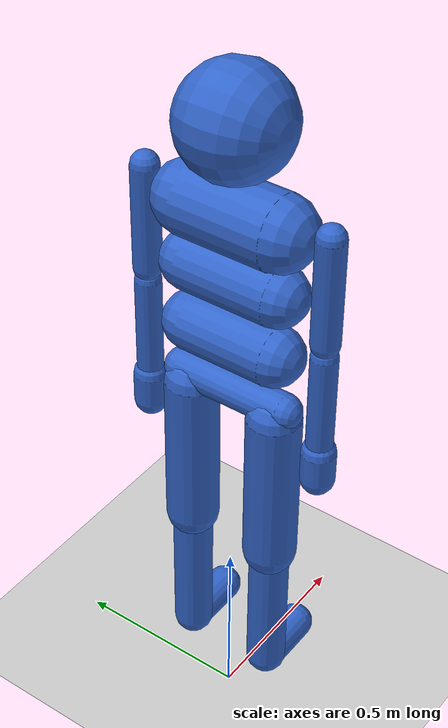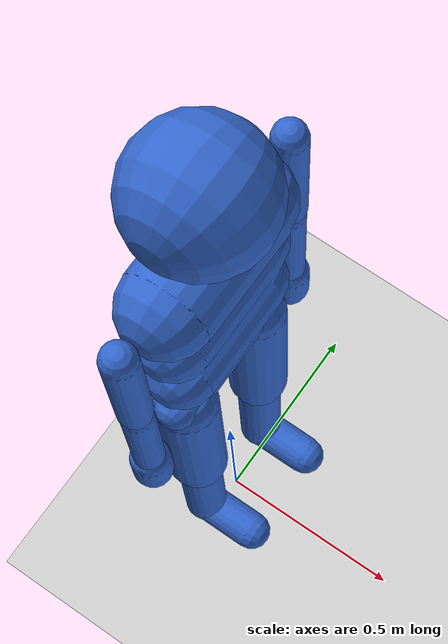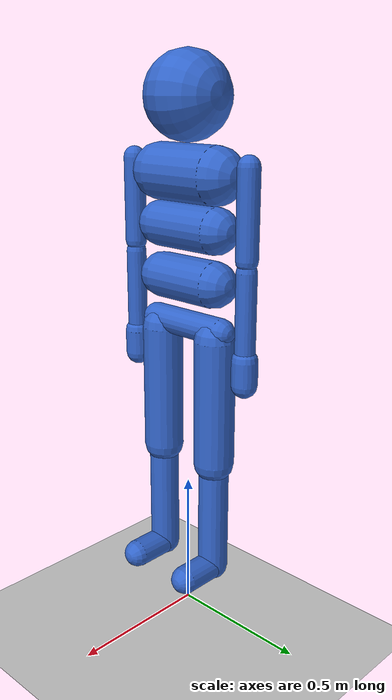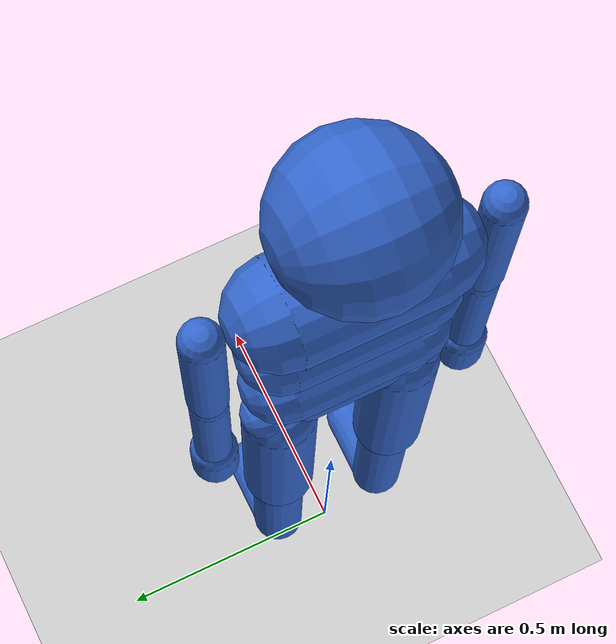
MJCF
<?xml version='1.0' encoding='utf-8'?>
<mujoco model="human">
  <worldbody>
    <geom type="plane" size="1 1 .1" rgba=".8 .8 .8 1" />
    <light diffuse=".8 .8 .8" pos="0 0 3" dir="0 0 -1" />
    <body name="thorax" pos="0 0 1.7090697674418605" euler="90 0 0">
      <joint type="free" pos="0 0 0" />
      <geom type="capsule" size="0.09612209302325583 0.12600000000000003" pos="0 -0.09612209302325583 0" euler="0 0 0" rgba="0.2 0.4 0.8 1" />
      <geom type="capsule" size="0.07864534883720932 0.12600000000000003" pos="0 -0.270889534883721 0" euler="0 0 0" rgba="0.2 0.4 0.8 1" />
      <body name="head" pos="0 0 0">
        <joint name="head_x" type="hinge" axis="1 0 0" pos="0 0 0" range="-45 45" />
        <joint name="head_y" type="hinge" axis="0 1 0" pos="0 0 0" range="-80 80" />
        <joint name="head_z" type="hinge" axis="0 0 1" pos="0 0 0" range="-60 75" />
        <geom type="sphere" size="0.1454651162790698" pos="0 0.1454651162790698 0" euler="0 0 0" rgba="0.2 0.4 0.8 1" />
      </body>
      <body name="abdomen" pos="0 -0.3495348837209303 0">
        <joint name="abdomen_x" type="hinge" axis="1 0 0" pos="0 0 0" range="-12.5 12.5" />
        <joint name="abdomen_y" type="hinge" axis="0 1 0" pos="0 0 0" range="-15 15" />
        <joint name="abdomen_z" type="hinge" axis="0 0 1" pos="0 0 0" range="-25 12.5" />
        <geom type="capsule" size="0.07901162790697674 0.12060000000000001" pos="0 -0.1 0" euler="0 0 0" rgba="0.2 0.4 0.8 1" />
        <body name="pelvis" pos="0 -0.1580232558139535 0">
          <joint name="pelvis_x" type="hinge" axis="1 0 0" pos="0 0 0" range="-12.5 12.5" />
          <joint name="pelvis_y" type="hinge" axis="0 1 0" pos="0 0 0" range="-15 15" />
          <joint name="pelvis_z" type="hinge" axis="0 0 1" pos="0 0 0" range="-25 12.5" />
          <geom type="capsule" size="0.04866279069767442 0.15300000000000002" pos="0 -0.1 0" euler="0 0 0" rgba="0.2 0.4 0.8 1" />
          <body name="left_thigh" pos="0 -0.09732558139534885 -0.126">
            <joint name="left_hip_x" type="hinge" axis="1 0 0" pos="0 0 0" range="-20 40" />
            <joint name="left_hip_y" type="hinge" axis="0 1 0" pos="0 0 0" range="-40 50" />
            <joint name="left_hip_z" type="hinge" axis="0 0 1" pos="0 0 0" range="-30 100" />
            <geom type="capsule" size="0.07200000000000001 0.22604651162790698" pos="0 -0.262046511627907 0" euler="-90 0 0" rgba="0.2 0.4 0.8 1" />
            <body name="left_shank" pos="0 -0.45209302325581396 0">
              <joint name="left_knee_z" type="hinge" axis="0 0 1" pos="0 0 0" range="-150 0" />
              <geom type="capsule" size="0.054 0.22656976744186047" pos="0 -0.22656976744186047 0" euler="-90 0 0" rgba="0.2 0.4 0.8 1" />
              <body name="left_foot" pos="0 -0.45313953488372094 0">
                <joint name="left_ankle_y" type="hinge" axis="0 1 0" pos="0 0 0" range="-30 30" />
                <joint name="left_ankle_z" type="hinge" axis="0 0 1" pos="0 0 0" range="-20 30" />
                <geom type="capsule" size="0.05 0.0727325581395349" pos="0.0727325581395349 0 0" euler="0 90 0" rgba="0.2 0.4 0.8 1" />
              </body>
            </body>
          </body>
          <body name="right_thigh" pos="0 -0.09732558139534885 0.126">
            <joint name="right_hip_x" type="hinge" axis="1 0 0" pos="0 0 0" range="-40 20" />
            <joint name="right_hip_y" type="hinge" axis="0 1 0" pos="0 0 0" range="-40 50" />
            <joint name="right_hip_z" type="hinge" axis="0 0 1" pos="0 0 0" range="-30 100" />
            <geom type="capsule" size="0.07200000000000001 0.22604651162790698" pos="0 -0.262046511627907 0" euler="-90 0 0" rgba="0.2 0.4 0.8 1" />
            <body name="right_shank" pos="0 -0.45209302325581396 0">
              <joint name="right_knee_z" type="hinge" axis="0 0 1" pos="0 0 0" range="-150 0" />
              <geom type="capsule" size="0.054 0.22656976744186047" pos="0 -0.22656976744186047 0" euler="-90 0 0" rgba="0.2 0.4 0.8 1" />
              <body name="right_foot" pos="0 -0.45313953488372094 0">
                <joint name="right_ankle_y" type="hinge" axis="0 1 0" pos="0 0 0" range="-30 30" />
                <joint name="right_ankle_z" type="hinge" axis="0 0 1" pos="0 0 0" range="-20 30" />
                <geom type="capsule" size="0.05 0.0727325581395349" pos="0.0727325581395349 0 0" euler="0 90 0" rgba="0.2 0.4 0.8 1" />
              </body>
            </body>
          </body>
        </body>
      </body>
      <body name="left_upper_arm" pos="0 -0.09612209302325583 -0.25956209302325584">
        <joint name="left_shoulder_x" type="hinge" axis="1 0 0" pos="0 0.03744 0" range="-50 180" />
        <joint name="left_shoulder_y" type="hinge" axis="0 1 0" pos="0 0.03744 0" range="-90 90" />
        <joint name="left_shoulder_z" type="hinge" axis="0 0 1" pos="0 0.03744 0" range="-50 180" />
        <geom type="capsule" size="0.03744 0.1449418604651163" pos="0 -0.10750186046511631 0" euler="-90 0 0" rgba="0.2 0.4 0.8 1" />
        <body name="left_forearm" pos="0 -0.2898837209302326 0">
          <joint name="left_elbow_z" type="hinge" axis="0 0 1" pos="0 0 0" range="0 150" />
          <geom type="capsule" size="0.035 0.1480813953488372" pos="0 -0.1480813953488372 0" euler="-90 0 0" rgba="0.2 0.4 0.8 1" />
          <body name="left_hand" pos="0 -0.2961627906976744 0">
            <joint name="left_wrist_y" type="hinge" axis="0 1 0" pos="0 0 0" range="-80 80" />
            <joint name="left_wrist_z" type="hinge" axis="0 0 1" pos="0 0 0" range="-60 60" />
            <geom type="capsule" size="0.045 0.041860465116279076" pos="0 -0.041860465116279076 0" euler="-90 0 0" rgba="0.2 0.4 0.8 1" />
          </body>
        </body>
      </body>
      <body name="right_upper_arm" pos="0 -0.09612209302325583 0.25956209302325584">
        <joint name="right_shoulder_x" type="hinge" axis="1 0 0" pos="0 0.03744 0" range="-50 180" />
        <joint name="right_shoulder_y" type="hinge" axis="0 1 0" pos="0 0.03744 0" range="-90 90" />
        <joint name="right_shoulder_z" type="hinge" axis="0 0 1" pos="0 0.03744 0" range="-50 180" />
        <geom type="capsule" size="0.03744 0.1449418604651163" pos="0 -0.10750186046511631 0" euler="-90 0 0" rgba="0.2 0.4 0.8 1" />
        <body name="right_forearm" pos="0 -0.2898837209302326 0">
          <joint name="right_elbow_z" type="hinge" axis="0 0 1" pos="0 0 0" range="0 150" />
          <geom type="capsule" size="0.035 0.1480813953488372" pos="0 -0.1480813953488372 0" euler="-90 0 0" rgba="0.2 0.4 0.8 1" />
          <body name="right_hand" pos="0 -0.2961627906976744 0">
            <joint name="right_wrist_y" type="hinge" axis="0 1 0" pos="0 0 0" range="-80 80" />
            <joint name="right_wrist_z" type="hinge" axis="0 0 1" pos="0 0 0" range="-60 60" />
            <geom type="capsule" size="0.045 0.041860465116279076" pos="0 -0.041860465116279076 0" euler="-90 0 0" rgba="0.2 0.4 0.8 1" />
          </body>
        </body>
      </body>
    </body>
  </worldbody>
  <option gravity="0 0 -9.81" />
</mujoco>
